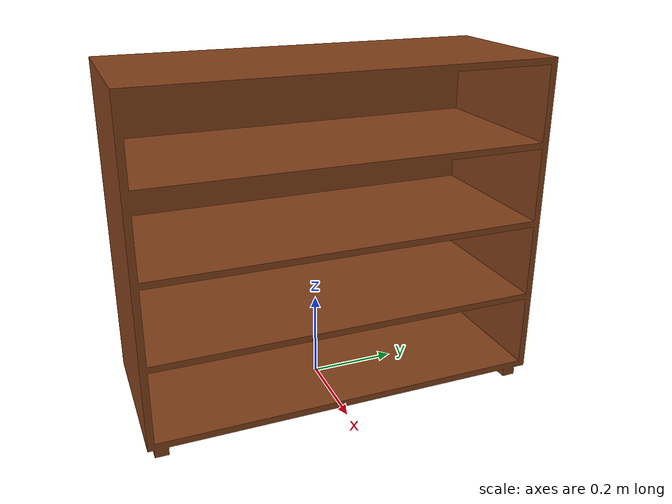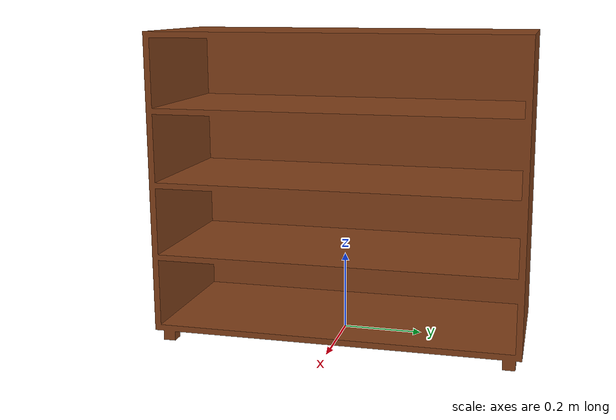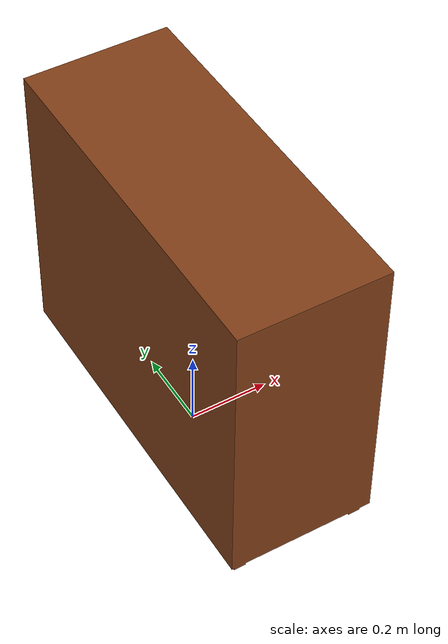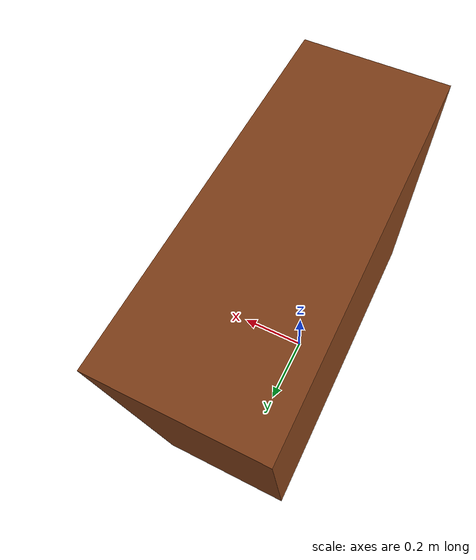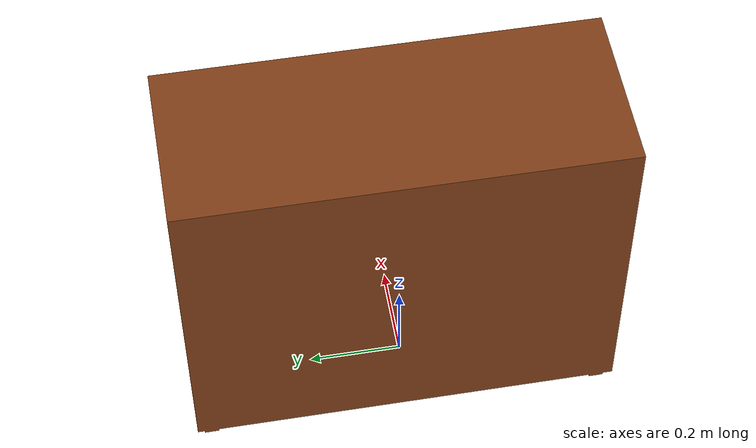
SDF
<?xml version='1.0'?>
<sdf version="1.3">

  <model name="Shelves">
    <pose> 0.0 0.0 0.0  0.0 0.0 0.0 </pose>
    <static>true</static>

    <link name="shelf_link">

      <visual name="visual">
        <geometry>
          <mesh><uri>model://Shelves/meshes/shelf_simple.dae</uri><scale>0.6 0.6 0.6</scale></mesh>
        </geometry>
      </visual>

      <collision name="collision">
        <geometry>
          <mesh><uri>model://Shelves/meshes/shelf_simple.dae</uri><scale>0.6 0.6 0.6</scale></mesh>
        </geometry>
      </collision>

    </link>
  </model>

</sdf>
